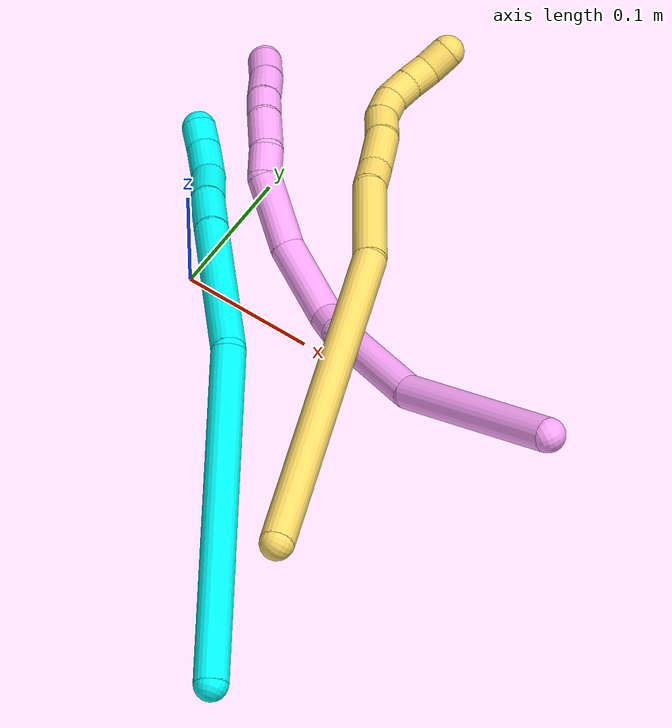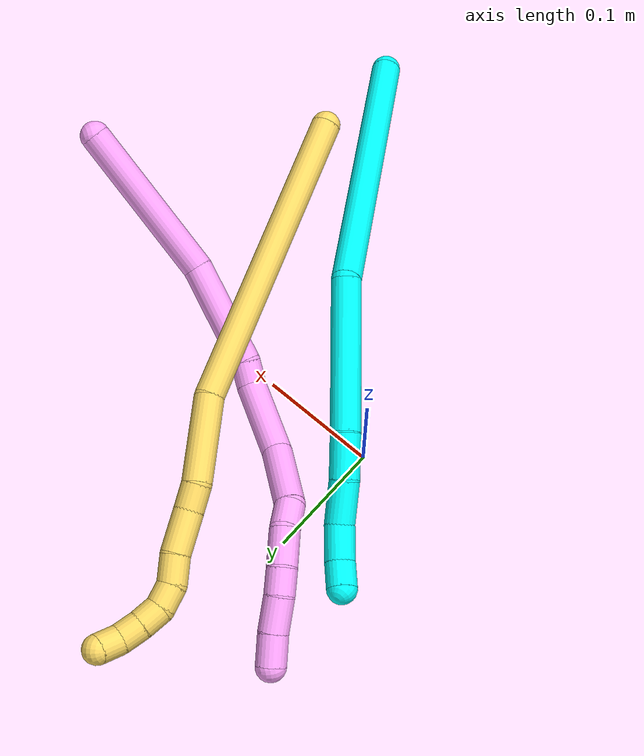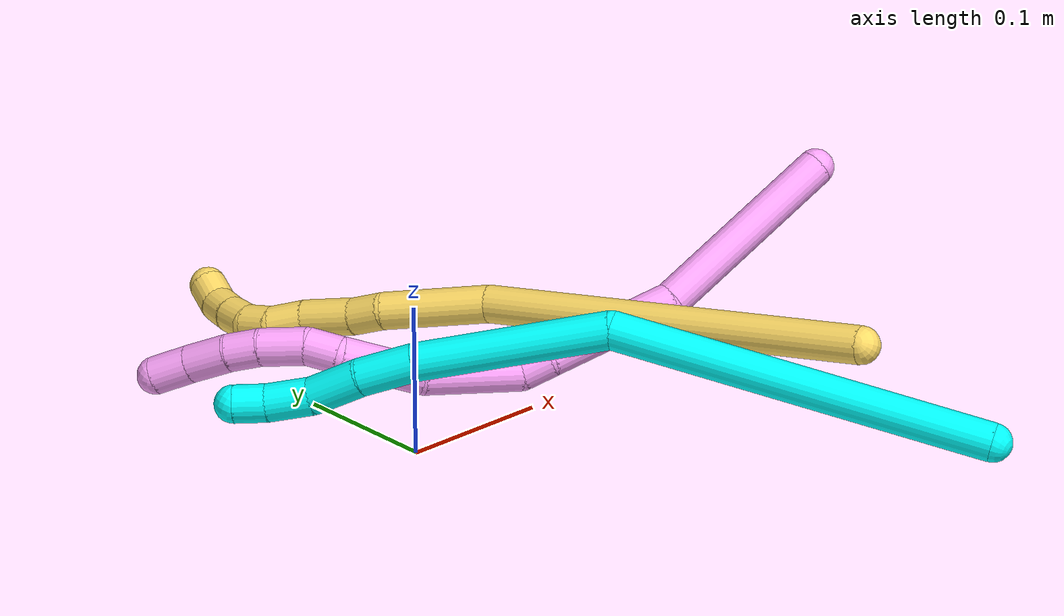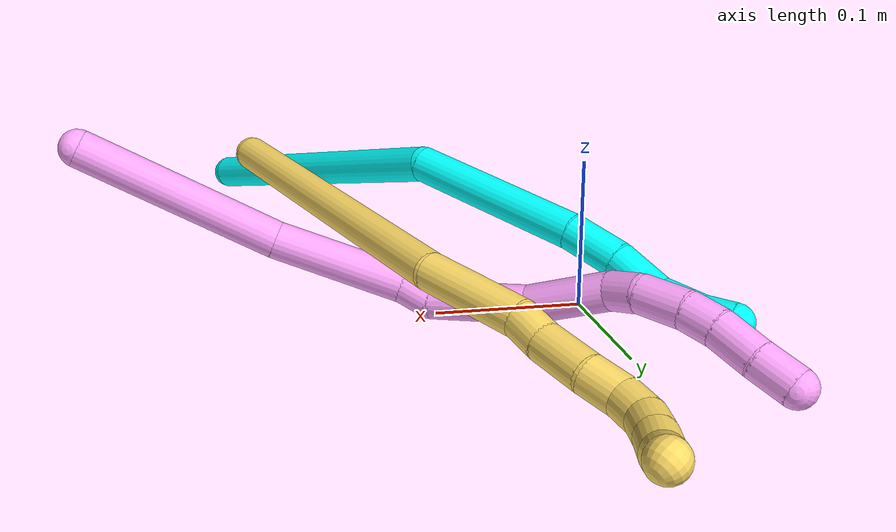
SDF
<sdf version="1.7">
 <world name="default">
  <model name="3">
   <static>0</static>
   <link name="3">
    <collision name="collision-cylinder-e_1_1_4">
     <pose>0.019976 0.029253 -0.118805 -2.90016 0.161837 -1.17859</pose>
     <geometry><cylinder><radius>0.0125</radius><length>0.247947</length></cylinder></geometry>
     <surface>
      <friction><ode><mu>1.16</mu><mu2>1.16</mu2><slip1>0</slip1><slip2>0</slip2></ode></friction>
      <contact><ode><kp>1e+06</kp><kd>1</kd><max_vel>0</max_vel><min_depth>0.001</min_depth></ode></contact>
     </surface>
    </collision>
    <visual name="visual-cylinder-e_1_1_4">
     <pose>0.019976 0.029253 -0.118805 -2.90016 0.161837 -1.17859</pose>
     <geometry><cylinder><radius>0.0125</radius><length>0.247947</length></cylinder></geometry>
     <material><ambient>0.003922 1 0.996078 1</ambient></material>
    </visual>
    <collision name="collision-cylinder-e_2_4_5">
     <pose>0.040926 0.097662 -0.287652 -2.47765 0.015332 -0.04447</pose>
     <geometry><cylinder><radius>0.0125</radius><length>0.127094</length></cylinder></geometry>
     <surface>
      <friction><ode><mu>1.16</mu><mu2>1.16</mu2><slip1>0</slip1><slip2>0</slip2></ode></friction>
      <contact><ode><kp>1e+06</kp><kd>1</kd><max_vel>0</max_vel><min_depth>0.001</min_depth></ode></contact>
     </surface>
    </collision>
    <visual name="visual-cylinder-e_2_4_5">
     <pose>0.040926 0.097662 -0.287652 -2.47765 0.015332 -0.04447</pose>
     <geometry><cylinder><radius>0.0125</radius><length>0.127094</length></cylinder></geometry>
     <material><ambient>0.003922 1 0.996078 1</ambient></material>
    </visual>
    <collision name="collision-cylinder-e_3_5_6">
     <pose>0.040541 0.149477 -0.351471 -2.39841 -0.07254 0.185694</pose>
     <geometry><cylinder><radius>0.0125</radius><length>0.037521</length></cylinder></geometry>
     <surface>
      <friction><ode><mu>1.16</mu><mu2>1.16</mu2><slip1>0</slip1><slip2>0</slip2></ode></friction>
      <contact><ode><kp>1e+06</kp><kd>1</kd><max_vel>0</max_vel><min_depth>0.001</min_depth></ode></contact>
     </surface>
    </collision>
    <visual name="visual-cylinder-e_3_5_6">
     <pose>0.040541 0.149477 -0.351471 -2.39841 -0.07254 0.185694</pose>
     <geometry><cylinder><radius>0.0125</radius><length>0.037521</length></cylinder></geometry>
     <material><ambient>0.003922 1 0.996078 1</ambient></material>
    </visual>
    <collision name="collision-cylinder-e_4_6_7">
     <pose>0.035259 0.174524 -0.377493 -2.35041 -0.221527 0.520563</pose>
     <geometry><cylinder><radius>0.0125</radius><length>0.035706</length></cylinder></geometry>
     <surface>
      <friction><ode><mu>1.16</mu><mu2>1.16</mu2><slip1>0</slip1><slip2>0</slip2></ode></friction>
      <contact><ode><kp>1e+06</kp><kd>1</kd><max_vel>0</max_vel><min_depth>0.001</min_depth></ode></contact>
     </surface>
    </collision>
    <visual name="visual-cylinder-e_4_6_7">
     <pose>0.035259 0.174524 -0.377493 -2.35041 -0.221527 0.520563</pose>
     <geometry><cylinder><radius>0.0125</radius><length>0.035706</length></cylinder></geometry>
     <material><ambient>0.003922 1 0.996078 1</ambient></material>
    </visual>
    <collision name="collision-cylinder-e_5_7_8">
     <pose>0.03194 0.196164 -0.401601 -2.47921 0.040126 -0.116575</pose>
     <geometry><cylinder><radius>0.0125</radius><length>0.030117</length></cylinder></geometry>
     <surface>
      <friction><ode><mu>1.16</mu><mu2>1.16</mu2><slip1>0</slip1><slip2>0</slip2></ode></friction>
      <contact><ode><kp>1e+06</kp><kd>1</kd><max_vel>0</max_vel><min_depth>0.001</min_depth></ode></contact>
     </surface>
    </collision>
    <visual name="visual-cylinder-e_5_7_8">
     <pose>0.03194 0.196164 -0.401601 -2.47921 0.040126 -0.116575</pose>
     <geometry><cylinder><radius>0.0125</radius><length>0.030117</length></cylinder></geometry>
     <material><ambient>0.003922 1 0.996078 1</ambient></material>
    </visual>
    <collision name="collision-cylinder-e_6_8_2">
     <pose>0.034508 0.211223 -0.422367 -2.56368 0.182702 -0.597835</pose>
     <geometry><cylinder><radius>0.0125</radius><length>0.021615</length></cylinder></geometry>
     <surface>
      <friction><ode><mu>1.16</mu><mu2>1.16</mu2><slip1>0</slip1><slip2>0</slip2></ode></friction>
      <contact><ode><kp>1e+06</kp><kd>1</kd><max_vel>0</max_vel><min_depth>0.001</min_depth></ode></contact>
     </surface>
    </collision>
    <visual name="visual-cylinder-e_6_8_2">
     <pose>0.034508 0.211223 -0.422367 -2.56368 0.182702 -0.597835</pose>
     <geometry><cylinder><radius>0.0125</radius><length>0.021615</length></cylinder></geometry>
     <material><ambient>0.003922 1 0.996078 1</ambient></material>
    </visual>
    <collision name="collision-sphere-2">
     <pose>0.036471 0.217029 -0.431269 0 -0 0</pose>
     <geometry><sphere><radius>0.0125</radius></sphere></geometry>
     <surface>
      <friction><ode><mu>1.16</mu><mu2>1.16</mu2><slip1>0</slip1><slip2>0</slip2></ode></friction>
      <contact><ode><kp>1e+06</kp><kd>1</kd><max_vel>0</max_vel><min_depth>0.001</min_depth></ode></contact>
     </surface>
    </collision>
    <visual name="visual-sphere-2">
     <pose>0.036471 0.217029 -0.431269 0 -0 0</pose>
     <geometry><sphere><radius>0.0125</radius></sphere></geometry>
     <material><ambient>0.003922 1 0.996078 1</ambient></material>
    </visual>
    <collision name="collision-sphere-4">
     <pose>0.039952 0.058507 -0.23761 0 -0 0</pose>
     <geometry><sphere><radius>0.0125</radius></sphere></geometry>
     <surface>
      <friction><ode><mu>1.16</mu><mu2>1.16</mu2><slip1>0</slip1><slip2>0</slip2></ode></friction>
      <contact><ode><kp>1e+06</kp><kd>1</kd><max_vel>0</max_vel><min_depth>0.001</min_depth></ode></contact>
     </surface>
    </collision>
    <visual name="visual-sphere-4">
     <pose>0.039952 0.058507 -0.23761 0 -0 0</pose>
     <geometry><sphere><radius>0.0125</radius></sphere></geometry>
     <material><ambient>0.003922 1 0.996078 1</ambient></material>
    </visual>
    <collision name="collision-sphere-1">
     <geometry><sphere><radius>0.0125</radius></sphere></geometry>
     <surface>
      <friction><ode><mu>1.16</mu><mu2>1.16</mu2><slip1>0</slip1><slip2>0</slip2></ode></friction>
      <contact><ode><kp>1e+06</kp><kd>1</kd><max_vel>0</max_vel><min_depth>0.001</min_depth></ode></contact>
     </surface>
    </collision>
    <visual name="visual-sphere-1">
     <geometry><sphere><radius>0.0125</radius></sphere></geometry>
     <material><ambient>0.003922 1 0.996078 1</ambient></material>
    </visual>
    <collision name="collision-sphere-8">
     <pose>0.032544 0.205418 -0.413465 0 -0 0</pose>
     <geometry><sphere><radius>0.0125</radius></sphere></geometry>
     <surface>
      <friction><ode><mu>1.16</mu><mu2>1.16</mu2><slip1>0</slip1><slip2>0</slip2></ode></friction>
      <contact><ode><kp>1e+06</kp><kd>1</kd><max_vel>0</max_vel><min_depth>0.001</min_depth></ode></contact>
     </surface>
    </collision>
    <visual name="visual-sphere-8">
     <pose>0.032544 0.205418 -0.413465 0 -0 0</pose>
     <geometry><sphere><radius>0.0125</radius></sphere></geometry>
     <material><ambient>0.003922 1 0.996078 1</ambient></material>
    </visual>
    <collision name="collision-sphere-5">
     <pose>0.041901 0.136817 -0.337694 0 -0 0</pose>
     <geometry><sphere><radius>0.0125</radius></sphere></geometry>
     <surface>
      <friction><ode><mu>1.16</mu><mu2>1.16</mu2><slip1>0</slip1><slip2>0</slip2></ode></friction>
      <contact><ode><kp>1e+06</kp><kd>1</kd><max_vel>0</max_vel><min_depth>0.001</min_depth></ode></contact>
     </surface>
    </collision>
    <visual name="visual-sphere-5">
     <pose>0.041901 0.136817 -0.337694 0 -0 0</pose>
     <geometry><sphere><radius>0.0125</radius></sphere></geometry>
     <material><ambient>0.003922 1 0.996078 1</ambient></material>
    </visual>
    <collision name="collision-sphere-6">
     <pose>0.039181 0.162138 -0.365249 0 -0 0</pose>
     <geometry><sphere><radius>0.0125</radius></sphere></geometry>
     <surface>
      <friction><ode><mu>1.16</mu><mu2>1.16</mu2><slip1>0</slip1><slip2>0</slip2></ode></friction>
      <contact><ode><kp>1e+06</kp><kd>1</kd><max_vel>0</max_vel><min_depth>0.001</min_depth></ode></contact>
     </surface>
    </collision>
    <visual name="visual-sphere-6">
     <pose>0.039181 0.162138 -0.365249 0 -0 0</pose>
     <geometry><sphere><radius>0.0125</radius></sphere></geometry>
     <material><ambient>0.003922 1 0.996078 1</ambient></material>
    </visual>
    <collision name="collision-sphere-7">
     <pose>0.031336 0.18691 -0.389736 0 -0 0</pose>
     <geometry><sphere><radius>0.0125</radius></sphere></geometry>
     <surface>
      <friction><ode><mu>1.16</mu><mu2>1.16</mu2><slip1>0</slip1><slip2>0</slip2></ode></friction>
      <contact><ode><kp>1e+06</kp><kd>1</kd><max_vel>0</max_vel><min_depth>0.001</min_depth></ode></contact>
     </surface>
    </collision>
    <visual name="visual-sphere-7">
     <pose>0.031336 0.18691 -0.389736 0 -0 0</pose>
     <geometry><sphere><radius>0.0125</radius></sphere></geometry>
     <material><ambient>0.003922 1 0.996078 1</ambient></material>
    </visual>
    <inertial>
     <pose>0.029285 0.083958 -0.227814 0 -0 0</pose>
     <mass>0.5</mass>
     <inertia>
      <ixx>-0.000496</ixx>
      <ixy>0</ixy>
      <ixz>0</ixz>
      <iyy>-0.001735</iyy>
      <iyz>0</iyz>
      <izz>-0.000663</izz>
     </inertia>
    </inertial>
   </link>
   <pose>0.220818 -0.288015 0.03518 -1.93528 -0.677376 -2.63319</pose>
  </model>
  <model name="4">
   <static>0</static>
   <link name="4">
    <collision name="collision-cylinder-e_1_1_4">
     <pose>-0.038344 0.050257 -0.028365 -2.08463 -0.58646 0.954497</pose>
     <geometry><cylinder><radius>0.0125</radius><length>0.138572</length></cylinder></geometry>
     <surface>
      <friction><ode><mu>1.16</mu><mu2>1.16</mu2><slip1>0</slip1><slip2>0</slip2></ode></friction>
      <contact><ode><kp>1e+06</kp><kd>1</kd><max_vel>0</max_vel><min_depth>0.001</min_depth></ode></contact>
     </surface>
    </collision>
    <visual name="visual-cylinder-e_1_1_4">
     <pose>-0.038344 0.050257 -0.028365 -2.08463 -0.58646 0.954497</pose>
     <geometry><cylinder><radius>0.0125</radius><length>0.138572</length></cylinder></geometry>
     <material><ambient>1 0.65098 0.996078 1</ambient></material>
    </visual>
    <collision name="collision-cylinder-e_2_4_5">
     <pose>-0.109365 0.129881 -0.06469 -1.83549 -0.821024 1.03451</pose>
     <geometry><cylinder><radius>0.0125</radius><length>0.089299</length></cylinder></geometry>
     <surface>
      <friction><ode><mu>1.16</mu><mu2>1.16</mu2><slip1>0</slip1><slip2>0</slip2></ode></friction>
      <contact><ode><kp>1e+06</kp><kd>1</kd><max_vel>0</max_vel><min_depth>0.001</min_depth></ode></contact>
     </surface>
    </collision>
    <visual name="visual-cylinder-e_2_4_5">
     <pose>-0.109365 0.129881 -0.06469 -1.83549 -0.821024 1.03451</pose>
     <geometry><cylinder><radius>0.0125</radius><length>0.089299</length></cylinder></geometry>
     <material><ambient>1 0.65098 0.996078 1</ambient></material>
    </visual>
    <collision name="collision-cylinder-e_3_5_6">
     <pose>-0.148811 0.167253 -0.07255 -1.55821 -0.702028 0.693936</pose>
     <geometry><cylinder><radius>0.0125</radius><length>0.020967</length></cylinder></geometry>
     <surface>
      <friction><ode><mu>1.16</mu><mu2>1.16</mu2><slip1>0</slip1><slip2>0</slip2></ode></friction>
      <contact><ode><kp>1e+06</kp><kd>1</kd><max_vel>0</max_vel><min_depth>0.001</min_depth></ode></contact>
     </surface>
    </collision>
    <visual name="visual-cylinder-e_3_5_6">
     <pose>-0.148811 0.167253 -0.07255 -1.55821 -0.702028 0.693936</pose>
     <geometry><cylinder><radius>0.0125</radius><length>0.020967</length></cylinder></geometry>
     <material><ambient>1 0.65098 0.996078 1</ambient></material>
    </visual>
    <collision name="collision-cylinder-e_4_6_7">
     <pose>-0.185574 0.187597 -0.071842 -1.52165 -1.18004 1.13502</pose>
     <geometry><cylinder><radius>0.0125</radius><length>0.064876</length></cylinder></geometry>
     <surface>
      <friction><ode><mu>1.16</mu><mu2>1.16</mu2><slip1>0</slip1><slip2>0</slip2></ode></friction>
      <contact><ode><kp>1e+06</kp><kd>1</kd><max_vel>0</max_vel><min_depth>0.001</min_depth></ode></contact>
     </surface>
    </collision>
    <visual name="visual-cylinder-e_4_6_7">
     <pose>-0.185574 0.187597 -0.071842 -1.52165 -1.18004 1.13502</pose>
     <geometry><cylinder><radius>0.0125</radius><length>0.064876</length></cylinder></geometry>
     <material><ambient>1 0.65098 0.996078 1</ambient></material>
    </visual>
    <collision name="collision-cylinder-e_5_7_8">
     <pose>-0.242699 0.204232 -0.066165 -0.702694 -1.33062 0.560119</pose>
     <geometry><cylinder><radius>0.0125</radius><length>0.055867</length></cylinder></geometry>
     <surface>
      <friction><ode><mu>1.16</mu><mu2>1.16</mu2><slip1>0</slip1><slip2>0</slip2></ode></friction>
      <contact><ode><kp>1e+06</kp><kd>1</kd><max_vel>0</max_vel><min_depth>0.001</min_depth></ode></contact>
     </surface>
    </collision>
    <visual name="visual-cylinder-e_5_7_8">
     <pose>-0.242699 0.204232 -0.066165 -0.702694 -1.33062 0.560119</pose>
     <geometry><cylinder><radius>0.0125</radius><length>0.055867</length></cylinder></geometry>
     <material><ambient>1 0.65098 0.996078 1</ambient></material>
    </visual>
    <collision name="collision-cylinder-e_6_8_9">
     <pose>-0.278978 0.211742 -0.055306 -0.507092 -0.944209 0.263096</pose>
     <geometry><cylinder><radius>0.0125</radius><length>0.022586</length></cylinder></geometry>
     <surface>
      <friction><ode><mu>1.16</mu><mu2>1.16</mu2><slip1>0</slip1><slip2>0</slip2></ode></friction>
      <contact><ode><kp>1e+06</kp><kd>1</kd><max_vel>0</max_vel><min_depth>0.001</min_depth></ode></contact>
     </surface>
    </collision>
    <visual name="visual-cylinder-e_6_8_9">
     <pose>-0.278978 0.211742 -0.055306 -0.507092 -0.944209 0.263096</pose>
     <geometry><cylinder><radius>0.0125</radius><length>0.022586</length></cylinder></geometry>
     <material><ambient>1 0.65098 0.996078 1</ambient></material>
    </visual>
    <collision name="collision-cylinder-e_7_9_10">
     <pose>-0.299815 0.223268 -0.043514 -0.945222 -0.850834 0.455255</pose>
     <geometry><cylinder><radius>0.0125</radius><length>0.031095</length></cylinder></geometry>
     <surface>
      <friction><ode><mu>1.16</mu><mu2>1.16</mu2><slip1>0</slip1><slip2>0</slip2></ode></friction>
      <contact><ode><kp>1e+06</kp><kd>1</kd><max_vel>0</max_vel><min_depth>0.001</min_depth></ode></contact>
     </surface>
    </collision>
    <visual name="visual-cylinder-e_7_9_10">
     <pose>-0.299815 0.223268 -0.043514 -0.945222 -0.850834 0.455255</pose>
     <geometry><cylinder><radius>0.0125</radius><length>0.031095</length></cylinder></geometry>
     <material><ambient>1 0.65098 0.996078 1</ambient></material>
    </visual>
    <collision name="collision-cylinder-e_8_10_11">
     <pose>-0.318608 0.238878 -0.033388 -1.05668 -0.702934 0.421705</pose>
     <geometry><cylinder><radius>0.0125</radius><length>0.021979</length></cylinder></geometry>
     <surface>
      <friction><ode><mu>1.16</mu><mu2>1.16</mu2><slip1>0</slip1><slip2>0</slip2></ode></friction>
      <contact><ode><kp>1e+06</kp><kd>1</kd><max_vel>0</max_vel><min_depth>0.001</min_depth></ode></contact>
     </surface>
    </collision>
    <visual name="visual-cylinder-e_8_10_11">
     <pose>-0.318608 0.238878 -0.033388 -1.05668 -0.702934 0.421705</pose>
     <geometry><cylinder><radius>0.0125</radius><length>0.021979</length></cylinder></geometry>
     <material><ambient>1 0.65098 0.996078 1</ambient></material>
    </visual>
    <collision name="collision-cylinder-e_9_11_12">
     <pose>-0.333267 0.256918 -0.023385 -1.0698 -0.55284 0.333061</pose>
     <geometry><cylinder><radius>0.0125</radius><length>0.028772</length></cylinder></geometry>
     <surface>
      <friction><ode><mu>1.16</mu><mu2>1.16</mu2><slip1>0</slip1><slip2>0</slip2></ode></friction>
      <contact><ode><kp>1e+06</kp><kd>1</kd><max_vel>0</max_vel><min_depth>0.001</min_depth></ode></contact>
     </surface>
    </collision>
    <visual name="visual-cylinder-e_9_11_12">
     <pose>-0.333267 0.256918 -0.023385 -1.0698 -0.55284 0.333061</pose>
     <geometry><cylinder><radius>0.0125</radius><length>0.028772</length></cylinder></geometry>
     <material><ambient>1 0.65098 0.996078 1</ambient></material>
    </visual>
    <collision name="collision-cylinder-e_10_12_2">
     <pose>-0.348192 0.277514 -0.013343 -1.17135 -0.603171 0.406964</pose>
     <geometry><cylinder><radius>0.0125</radius><length>0.025986</length></cylinder></geometry>
     <surface>
      <friction><ode><mu>1.16</mu><mu2>1.16</mu2><slip1>0</slip1><slip2>0</slip2></ode></friction>
      <contact><ode><kp>1e+06</kp><kd>1</kd><max_vel>0</max_vel><min_depth>0.001</min_depth></ode></contact>
     </surface>
    </collision>
    <visual name="visual-cylinder-e_10_12_2">
     <pose>-0.348192 0.277514 -0.013343 -1.17135 -0.603171 0.406964</pose>
     <geometry><cylinder><radius>0.0125</radius><length>0.025986</length></cylinder></geometry>
     <material><ambient>1 0.65098 0.996078 1</ambient></material>
    </visual>
    <collision name="collision-sphere-2">
     <pose>-0.355562 0.287371 -0.009181 0 -0 0</pose>
     <geometry><sphere><radius>0.0125</radius></sphere></geometry>
     <surface>
      <friction><ode><mu>1.16</mu><mu2>1.16</mu2><slip1>0</slip1><slip2>0</slip2></ode></friction>
      <contact><ode><kp>1e+06</kp><kd>1</kd><max_vel>0</max_vel><min_depth>0.001</min_depth></ode></contact>
     </surface>
    </collision>
    <visual name="visual-sphere-2">
     <pose>-0.355562 0.287371 -0.009181 0 -0 0</pose>
     <geometry><sphere><radius>0.0125</radius></sphere></geometry>
     <material><ambient>1 0.65098 0.996078 1</ambient></material>
    </visual>
    <collision name="collision-sphere-12">
     <pose>-0.340821 0.267656 -0.017504 0 -0 0</pose>
     <geometry><sphere><radius>0.0125</radius></sphere></geometry>
     <surface>
      <friction><ode><mu>1.16</mu><mu2>1.16</mu2><slip1>0</slip1><slip2>0</slip2></ode></friction>
      <contact><ode><kp>1e+06</kp><kd>1</kd><max_vel>0</max_vel><min_depth>0.001</min_depth></ode></contact>
     </surface>
    </collision>
    <visual name="visual-sphere-12">
     <pose>-0.340821 0.267656 -0.017504 0 -0 0</pose>
     <geometry><sphere><radius>0.0125</radius></sphere></geometry>
     <material><ambient>1 0.65098 0.996078 1</ambient></material>
    </visual>
    <collision name="collision-sphere-11">
     <pose>-0.325713 0.246179 -0.029265 0 -0 0</pose>
     <geometry><sphere><radius>0.0125</radius></sphere></geometry>
     <surface>
      <friction><ode><mu>1.16</mu><mu2>1.16</mu2><slip1>0</slip1><slip2>0</slip2></ode></friction>
      <contact><ode><kp>1e+06</kp><kd>1</kd><max_vel>0</max_vel><min_depth>0.001</min_depth></ode></contact>
     </surface>
    </collision>
    <visual name="visual-sphere-11">
     <pose>-0.325713 0.246179 -0.029265 0 -0 0</pose>
     <geometry><sphere><radius>0.0125</radius></sphere></geometry>
     <material><ambient>1 0.65098 0.996078 1</ambient></material>
    </visual>
    <collision name="collision-sphere-10">
     <pose>-0.311504 0.231578 -0.037511 0 -0 0</pose>
     <geometry><sphere><radius>0.0125</radius></sphere></geometry>
     <surface>
      <friction><ode><mu>1.16</mu><mu2>1.16</mu2><slip1>0</slip1><slip2>0</slip2></ode></friction>
      <contact><ode><kp>1e+06</kp><kd>1</kd><max_vel>0</max_vel><min_depth>0.001</min_depth></ode></contact>
     </surface>
    </collision>
    <visual name="visual-sphere-10">
     <pose>-0.311504 0.231578 -0.037511 0 -0 0</pose>
     <geometry><sphere><radius>0.0125</radius></sphere></geometry>
     <material><ambient>1 0.65098 0.996078 1</ambient></material>
    </visual>
    <collision name="collision-sphere-9">
     <pose>-0.288126 0.214958 -0.049517 0 -0 0</pose>
     <geometry><sphere><radius>0.0125</radius></sphere></geometry>
     <surface>
      <friction><ode><mu>1.16</mu><mu2>1.16</mu2><slip1>0</slip1><slip2>0</slip2></ode></friction>
      <contact><ode><kp>1e+06</kp><kd>1</kd><max_vel>0</max_vel><min_depth>0.001</min_depth></ode></contact>
     </surface>
    </collision>
    <visual name="visual-sphere-9">
     <pose>-0.288126 0.214958 -0.049517 0 -0 0</pose>
     <geometry><sphere><radius>0.0125</radius></sphere></geometry>
     <material><ambient>1 0.65098 0.996078 1</ambient></material>
    </visual>
    <collision name="collision-sphere-4">
     <pose>-0.076688 0.100513 -0.05673 0 -0 0</pose>
     <geometry><sphere><radius>0.0125</radius></sphere></geometry>
     <surface>
      <friction><ode><mu>1.16</mu><mu2>1.16</mu2><slip1>0</slip1><slip2>0</slip2></ode></friction>
      <contact><ode><kp>1e+06</kp><kd>1</kd><max_vel>0</max_vel><min_depth>0.001</min_depth></ode></contact>
     </surface>
    </collision>
    <visual name="visual-sphere-4">
     <pose>-0.076688 0.100513 -0.05673 0 -0 0</pose>
     <geometry><sphere><radius>0.0125</radius></sphere></geometry>
     <material><ambient>1 0.65098 0.996078 1</ambient></material>
    </visual>
    <collision name="collision-sphere-1">
     <geometry><sphere><radius>0.0125</radius></sphere></geometry>
     <surface>
      <friction><ode><mu>1.16</mu><mu2>1.16</mu2><slip1>0</slip1><slip2>0</slip2></ode></friction>
      <contact><ode><kp>1e+06</kp><kd>1</kd><max_vel>0</max_vel><min_depth>0.001</min_depth></ode></contact>
     </surface>
    </collision>
    <visual name="visual-sphere-1">
     <geometry><sphere><radius>0.0125</radius></sphere></geometry>
     <material><ambient>1 0.65098 0.996078 1</ambient></material>
    </visual>
    <collision name="collision-sphere-8">
     <pose>-0.269831 0.208526 -0.061094 0 -0 0</pose>
     <geometry><sphere><radius>0.0125</radius></sphere></geometry>
     <surface>
      <friction><ode><mu>1.16</mu><mu2>1.16</mu2><slip1>0</slip1><slip2>0</slip2></ode></friction>
      <contact><ode><kp>1e+06</kp><kd>1</kd><max_vel>0</max_vel><min_depth>0.001</min_depth></ode></contact>
     </surface>
    </collision>
    <visual name="visual-sphere-8">
     <pose>-0.269831 0.208526 -0.061094 0 -0 0</pose>
     <geometry><sphere><radius>0.0125</radius></sphere></geometry>
     <material><ambient>1 0.65098 0.996078 1</ambient></material>
    </visual>
    <collision name="collision-sphere-5">
     <pose>-0.142041 0.159249 -0.072651 0 -0 0</pose>
     <geometry><sphere><radius>0.0125</radius></sphere></geometry>
     <surface>
      <friction><ode><mu>1.16</mu><mu2>1.16</mu2><slip1>0</slip1><slip2>0</slip2></ode></friction>
      <contact><ode><kp>1e+06</kp><kd>1</kd><max_vel>0</max_vel><min_depth>0.001</min_depth></ode></contact>
     </surface>
    </collision>
    <visual name="visual-sphere-5">
     <pose>-0.142041 0.159249 -0.072651 0 -0 0</pose>
     <geometry><sphere><radius>0.0125</radius></sphere></geometry>
     <material><ambient>1 0.65098 0.996078 1</ambient></material>
    </visual>
    <collision name="collision-sphere-6">
     <pose>-0.155581 0.175257 -0.072449 0 -0 0</pose>
     <geometry><sphere><radius>0.0125</radius></sphere></geometry>
     <surface>
      <friction><ode><mu>1.16</mu><mu2>1.16</mu2><slip1>0</slip1><slip2>0</slip2></ode></friction>
      <contact><ode><kp>1e+06</kp><kd>1</kd><max_vel>0</max_vel><min_depth>0.001</min_depth></ode></contact>
     </surface>
    </collision>
    <visual name="visual-sphere-6">
     <pose>-0.155581 0.175257 -0.072449 0 -0 0</pose>
     <geometry><sphere><radius>0.0125</radius></sphere></geometry>
     <material><ambient>1 0.65098 0.996078 1</ambient></material>
    </visual>
    <collision name="collision-sphere-7">
     <pose>-0.215567 0.199937 -0.071235 0 -0 0</pose>
     <geometry><sphere><radius>0.0125</radius></sphere></geometry>
     <surface>
      <friction><ode><mu>1.16</mu><mu2>1.16</mu2><slip1>0</slip1><slip2>0</slip2></ode></friction>
      <contact><ode><kp>1e+06</kp><kd>1</kd><max_vel>0</max_vel><min_depth>0.001</min_depth></ode></contact>
     </surface>
    </collision>
    <visual name="visual-sphere-7">
     <pose>-0.215567 0.199937 -0.071235 0 -0 0</pose>
     <geometry><sphere><radius>0.0125</radius></sphere></geometry>
     <material><ambient>1 0.65098 0.996078 1</ambient></material>
    </visual>
    <inertial>
     <pose>-0.170123 0.154457 -0.047883 0 -0 0</pose>
     <mass>0.5</mass>
     <inertia><ixx>0.000327</ixx><ixy>0</ixy><ixz>0</ixz><iyy>0.000331</iyy><iyz>0</iyz><izz>-7e-06</izz></inertia>
    </inertial>
   </link>
   <pose>0.325683 -0.033023 0.115474 -1.41851 0.448088 -0.433428</pose>
  </model>
  <model name="5">
   <static>0</static>
   <link name="5">
    <collision name="collision-cylinder-e_1_1_4">
     <pose>-0.077772 0.105986 0.01343 -1.44475 -0.629259 0.558614</pose>
     <geometry><cylinder><radius>0.0125</radius><length>0.264286</length></cylinder></geometry>
     <surface>
      <friction><ode><mu>1.16</mu><mu2>1.16</mu2><slip1>0</slip1><slip2>0</slip2></ode></friction>
      <contact><ode><kp>1e+06</kp><kd>1</kd><max_vel>0</max_vel><min_depth>0.001</min_depth></ode></contact>
     </surface>
    </collision>
    <visual name="visual-cylinder-e_1_1_4">
     <pose>-0.077772 0.105986 0.01343 -1.44475 -0.629259 0.558614</pose>
     <geometry><cylinder><radius>0.0125</radius><length>0.264286</length></cylinder></geometry>
     <material><ambient>1 0.858824 0.4 1</ambient></material>
    </visual>
    <collision name="collision-cylinder-e_2_4_5">
     <pose>-0.170848 0.244867 0.024591 -1.63965 -0.434514 0.464443</pose>
     <geometry><cylinder><radius>0.0125</radius><length>0.072703</length></cylinder></geometry>
     <surface>
      <friction><ode><mu>1.16</mu><mu2>1.16</mu2><slip1>0</slip1><slip2>0</slip2></ode></friction>
      <contact><ode><kp>1e+06</kp><kd>1</kd><max_vel>0</max_vel><min_depth>0.001</min_depth></ode></contact>
     </surface>
    </collision>
    <visual name="visual-cylinder-e_2_4_5">
     <pose>-0.170848 0.244867 0.024591 -1.63965 -0.434514 0.464443</pose>
     <geometry><cylinder><radius>0.0125</radius><length>0.072703</length></cylinder></geometry>
     <material><ambient>1 0.858824 0.4 1</ambient></material>
    </visual>
    <collision name="collision-cylinder-e_3_5_6">
     <pose>-0.190253 0.287991 0.024267 -1.38298 -0.375374 0.311899</pose>
     <geometry><cylinder><radius>0.0125</radius><length>0.022382</length></cylinder></geometry>
     <surface>
      <friction><ode><mu>1.16</mu><mu2>1.16</mu2><slip1>0</slip1><slip2>0</slip2></ode></friction>
      <contact><ode><kp>1e+06</kp><kd>1</kd><max_vel>0</max_vel><min_depth>0.001</min_depth></ode></contact>
     </surface>
    </collision>
    <visual name="visual-cylinder-e_3_5_6">
     <pose>-0.190253 0.287991 0.024267 -1.38298 -0.375374 0.311899</pose>
     <geometry><cylinder><radius>0.0125</radius><length>0.022382</length></cylinder></geometry>
     <material><ambient>1 0.858824 0.4 1</ambient></material>
    </visual>
    <collision name="collision-cylinder-e_4_6_7">
     <pose>-0.20285 0.314121 0.027882 -1.4661 -0.488329 0.441348</pose>
     <geometry><cylinder><radius>0.0125</radius><length>0.03621</length></cylinder></geometry>
     <surface>
      <friction><ode><mu>1.16</mu><mu2>1.16</mu2><slip1>0</slip1><slip2>0</slip2></ode></friction>
      <contact><ode><kp>1e+06</kp><kd>1</kd><max_vel>0</max_vel><min_depth>0.001</min_depth></ode></contact>
     </surface>
    </collision>
    <visual name="visual-cylinder-e_4_6_7">
     <pose>-0.20285 0.314121 0.027882 -1.4661 -0.488329 0.441348</pose>
     <geometry><cylinder><radius>0.0125</radius><length>0.03621</length></cylinder></geometry>
     <material><ambient>1 0.858824 0.4 1</ambient></material>
    </visual>
    <collision name="collision-cylinder-e_5_7_8">
     <pose>-0.215242 0.341458 0.029388 -1.58523 -0.328494 0.333184</pose>
     <geometry><cylinder><radius>0.0125</radius><length>0.024166</length></cylinder></geometry>
     <surface>
      <friction><ode><mu>1.16</mu><mu2>1.16</mu2><slip1>0</slip1><slip2>0</slip2></ode></friction>
      <contact><ode><kp>1e+06</kp><kd>1</kd><max_vel>0</max_vel><min_depth>0.001</min_depth></ode></contact>
     </surface>
    </collision>
    <visual name="visual-cylinder-e_5_7_8">
     <pose>-0.215242 0.341458 0.029388 -1.58523 -0.328494 0.333184</pose>
     <geometry><cylinder><radius>0.0125</radius><length>0.024166</length></cylinder></geometry>
     <material><ambient>1 0.858824 0.4 1</ambient></material>
    </visual>
    <collision name="collision-cylinder-e_6_8_9">
     <pose>-0.224837 0.36096 0.03145 -1.30139 -0.597702 0.460751</pose>
     <geometry><cylinder><radius>0.0125</radius><length>0.020245</length></cylinder></geometry>
     <surface>
      <friction><ode><mu>1.16</mu><mu2>1.16</mu2><slip1>0</slip1><slip2>0</slip2></ode></friction>
      <contact><ode><kp>1e+06</kp><kd>1</kd><max_vel>0</max_vel><min_depth>0.001</min_depth></ode></contact>
     </surface>
    </collision>
    <visual name="visual-cylinder-e_6_8_9">
     <pose>-0.224837 0.36096 0.03145 -1.30139 -0.597702 0.460751</pose>
     <geometry><cylinder><radius>0.0125</radius><length>0.020245</length></cylinder></geometry>
     <material><ambient>1 0.858824 0.4 1</ambient></material>
    </visual>
    <collision name="collision-cylinder-e_7_9_10">
     <pose>-0.237802 0.374241 0.038149 -0.861939 -0.813589 0.391119</pose>
     <geometry><cylinder><radius>0.0125</radius><length>0.020003</length></cylinder></geometry>
     <surface>
      <friction><ode><mu>1.16</mu><mu2>1.16</mu2><slip1>0</slip1><slip2>0</slip2></ode></friction>
      <contact><ode><kp>1e+06</kp><kd>1</kd><max_vel>0</max_vel><min_depth>0.001</min_depth></ode></contact>
     </surface>
    </collision>
    <visual name="visual-cylinder-e_7_9_10">
     <pose>-0.237802 0.374241 0.038149 -0.861939 -0.813589 0.391119</pose>
     <geometry><cylinder><radius>0.0125</radius><length>0.020003</length></cylinder></geometry>
     <material><ambient>1 0.858824 0.4 1</ambient></material>
    </visual>
    <collision name="collision-cylinder-e_8_10_11">
     <pose>-0.252608 0.383785 0.047569 -0.718853 -0.853485 0.338426</pose>
     <geometry><cylinder><radius>0.0125</radius><length>0.020003</length></cylinder></geometry>
     <surface>
      <friction><ode><mu>1.16</mu><mu2>1.16</mu2><slip1>0</slip1><slip2>0</slip2></ode></friction>
      <contact><ode><kp>1e+06</kp><kd>1</kd><max_vel>0</max_vel><min_depth>0.001</min_depth></ode></contact>
     </surface>
    </collision>
    <visual name="visual-cylinder-e_8_10_11">
     <pose>-0.252608 0.383785 0.047569 -0.718853 -0.853485 0.338426</pose>
     <geometry><cylinder><radius>0.0125</radius><length>0.020003</length></cylinder></geometry>
     <material><ambient>1 0.858824 0.4 1</ambient></material>
    </visual>
    <collision name="collision-cylinder-e_9_11_2">
     <pose>-0.269358 0.389869 0.055986 -0.4682 -1.1715 0.313811</pose>
     <geometry><cylinder><radius>0.0125</radius><length>0.02</length></cylinder></geometry>
     <surface>
      <friction><ode><mu>1.16</mu><mu2>1.16</mu2><slip1>0</slip1><slip2>0</slip2></ode></friction>
      <contact><ode><kp>1e+06</kp><kd>1</kd><max_vel>0</max_vel><min_depth>0.001</min_depth></ode></contact>
     </surface>
    </collision>
    <visual name="visual-cylinder-e_9_11_2">
     <pose>-0.269358 0.389869 0.055986 -0.4682 -1.1715 0.313811</pose>
     <geometry><cylinder><radius>0.0125</radius><length>0.02</length></cylinder></geometry>
     <material><ambient>1 0.858824 0.4 1</ambient></material>
    </visual>
    <collision name="collision-sphere-2">
     <pose>-0.278572 0.391624 0.059456 0 -0 0</pose>
     <geometry><sphere><radius>0.0125</radius></sphere></geometry>
     <surface>
      <friction><ode><mu>1.16</mu><mu2>1.16</mu2><slip1>0</slip1><slip2>0</slip2></ode></friction>
      <contact><ode><kp>1e+06</kp><kd>1</kd><max_vel>0</max_vel><min_depth>0.001</min_depth></ode></contact>
     </surface>
    </collision>
    <visual name="visual-sphere-2">
     <pose>-0.278572 0.391624 0.059456 0 -0 0</pose>
     <geometry><sphere><radius>0.0125</radius></sphere></geometry>
     <material><ambient>1 0.858824 0.4 1</ambient></material>
    </visual>
    <collision name="collision-sphere-11">
     <pose>-0.260145 0.388115 0.052517 0 -0 0</pose>
     <geometry><sphere><radius>0.0125</radius></sphere></geometry>
     <surface>
      <friction><ode><mu>1.16</mu><mu2>1.16</mu2><slip1>0</slip1><slip2>0</slip2></ode></friction>
      <contact><ode><kp>1e+06</kp><kd>1</kd><max_vel>0</max_vel><min_depth>0.001</min_depth></ode></contact>
     </surface>
    </collision>
    <visual name="visual-sphere-11">
     <pose>-0.260145 0.388115 0.052517 0 -0 0</pose>
     <geometry><sphere><radius>0.0125</radius></sphere></geometry>
     <material><ambient>1 0.858824 0.4 1</ambient></material>
    </visual>
    <collision name="collision-sphere-10">
     <pose>-0.245071 0.379456 0.042621 0 -0 0</pose>
     <geometry><sphere><radius>0.0125</radius></sphere></geometry>
     <surface>
      <friction><ode><mu>1.16</mu><mu2>1.16</mu2><slip1>0</slip1><slip2>0</slip2></ode></friction>
      <contact><ode><kp>1e+06</kp><kd>1</kd><max_vel>0</max_vel><min_depth>0.001</min_depth></ode></contact>
     </surface>
    </collision>
    <visual name="visual-sphere-10">
     <pose>-0.245071 0.379456 0.042621 0 -0 0</pose>
     <geometry><sphere><radius>0.0125</radius></sphere></geometry>
     <material><ambient>1 0.858824 0.4 1</ambient></material>
    </visual>
    <collision name="collision-sphere-9">
     <pose>-0.230533 0.369026 0.033677 0 -0 0</pose>
     <geometry><sphere><radius>0.0125</radius></sphere></geometry>
     <surface>
      <friction><ode><mu>1.16</mu><mu2>1.16</mu2><slip1>0</slip1><slip2>0</slip2></ode></friction>
      <contact><ode><kp>1e+06</kp><kd>1</kd><max_vel>0</max_vel><min_depth>0.001</min_depth></ode></contact>
     </surface>
    </collision>
    <visual name="visual-sphere-9">
     <pose>-0.230533 0.369026 0.033677 0 -0 0</pose>
     <geometry><sphere><radius>0.0125</radius></sphere></geometry>
     <material><ambient>1 0.858824 0.4 1</ambient></material>
    </visual>
    <collision name="collision-sphere-4">
     <pose>-0.155545 0.211971 0.02686 0 -0 0</pose>
     <geometry><sphere><radius>0.0125</radius></sphere></geometry>
     <surface>
      <friction><ode><mu>1.16</mu><mu2>1.16</mu2><slip1>0</slip1><slip2>0</slip2></ode></friction>
      <contact><ode><kp>1e+06</kp><kd>1</kd><max_vel>0</max_vel><min_depth>0.001</min_depth></ode></contact>
     </surface>
    </collision>
    <visual name="visual-sphere-4">
     <pose>-0.155545 0.211971 0.02686 0 -0 0</pose>
     <geometry><sphere><radius>0.0125</radius></sphere></geometry>
     <material><ambient>1 0.858824 0.4 1</ambient></material>
    </visual>
    <collision name="collision-sphere-1">
     <geometry><sphere><radius>0.0125</radius></sphere></geometry>
     <surface>
      <friction><ode><mu>1.16</mu><mu2>1.16</mu2><slip1>0</slip1><slip2>0</slip2></ode></friction>
      <contact><ode><kp>1e+06</kp><kd>1</kd><max_vel>0</max_vel><min_depth>0.001</min_depth></ode></contact>
     </surface>
    </collision>
    <visual name="visual-sphere-1">
     <geometry><sphere><radius>0.0125</radius></sphere></geometry>
     <material><ambient>1 0.858824 0.4 1</ambient></material>
    </visual>
    <collision name="collision-sphere-8">
     <pose>-0.219141 0.352894 0.029222 0 -0 0</pose>
     <geometry><sphere><radius>0.0125</radius></sphere></geometry>
     <surface>
      <friction><ode><mu>1.16</mu><mu2>1.16</mu2><slip1>0</slip1><slip2>0</slip2></ode></friction>
      <contact><ode><kp>1e+06</kp><kd>1</kd><max_vel>0</max_vel><min_depth>0.001</min_depth></ode></contact>
     </surface>
    </collision>
    <visual name="visual-sphere-8">
     <pose>-0.219141 0.352894 0.029222 0 -0 0</pose>
     <geometry><sphere><radius>0.0125</radius></sphere></geometry>
     <material><ambient>1 0.858824 0.4 1</ambient></material>
    </visual>
    <collision name="collision-sphere-5">
     <pose>-0.186151 0.277762 0.022323 0 -0 0</pose>
     <geometry><sphere><radius>0.0125</radius></sphere></geometry>
     <surface>
      <friction><ode><mu>1.16</mu><mu2>1.16</mu2><slip1>0</slip1><slip2>0</slip2></ode></friction>
      <contact><ode><kp>1e+06</kp><kd>1</kd><max_vel>0</max_vel><min_depth>0.001</min_depth></ode></contact>
     </surface>
    </collision>
    <visual name="visual-sphere-5">
     <pose>-0.186151 0.277762 0.022323 0 -0 0</pose>
     <geometry><sphere><radius>0.0125</radius></sphere></geometry>
     <material><ambient>1 0.858824 0.4 1</ambient></material>
    </visual>
    <collision name="collision-sphere-6">
     <pose>-0.194356 0.29822 0.026211 0 -0 0</pose>
     <geometry><sphere><radius>0.0125</radius></sphere></geometry>
     <surface>
      <friction><ode><mu>1.16</mu><mu2>1.16</mu2><slip1>0</slip1><slip2>0</slip2></ode></friction>
      <contact><ode><kp>1e+06</kp><kd>1</kd><max_vel>0</max_vel><min_depth>0.001</min_depth></ode></contact>
     </surface>
    </collision>
    <visual name="visual-sphere-6">
     <pose>-0.194356 0.29822 0.026211 0 -0 0</pose>
     <geometry><sphere><radius>0.0125</radius></sphere></geometry>
     <material><ambient>1 0.858824 0.4 1</ambient></material>
    </visual>
    <collision name="collision-sphere-7">
     <pose>-0.211344 0.330022 0.029553 0 -0 0</pose>
     <geometry><sphere><radius>0.0125</radius></sphere></geometry>
     <surface>
      <friction><ode><mu>1.16</mu><mu2>1.16</mu2><slip1>0</slip1><slip2>0</slip2></ode></friction>
      <contact><ode><kp>1e+06</kp><kd>1</kd><max_vel>0</max_vel><min_depth>0.001</min_depth></ode></contact>
     </surface>
    </collision>
    <visual name="visual-sphere-7">
     <pose>-0.211344 0.330022 0.029553 0 -0 0</pose>
     <geometry><sphere><radius>0.0125</radius></sphere></geometry>
     <material><ambient>1 0.858824 0.4 1</ambient></material>
    </visual>
    <inertial>
     <pose>-0.139059 0.204306 0.022142 0 -0 0</pose>
     <mass>0.5</mass>
     <inertia>
      <ixx>0.001762</ixx>
      <ixy>0</ixy>
      <ixz>0</ixz>
      <iyy>0.001369</iyy>
      <iyz>0</iyz>
      <izz>-0.000346</izz>
     </inertia>
    </inertial>
   </link>
   <pose>0.206773 -0.188455 0.072835 -2.36832 0.720316 -1.74907</pose>
  </model>
 </world>
</sdf>
